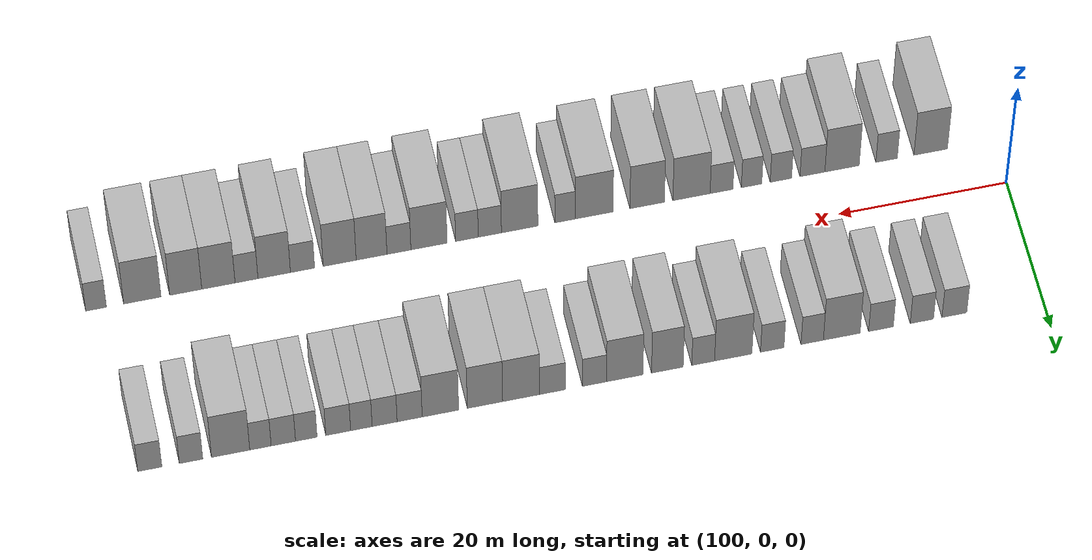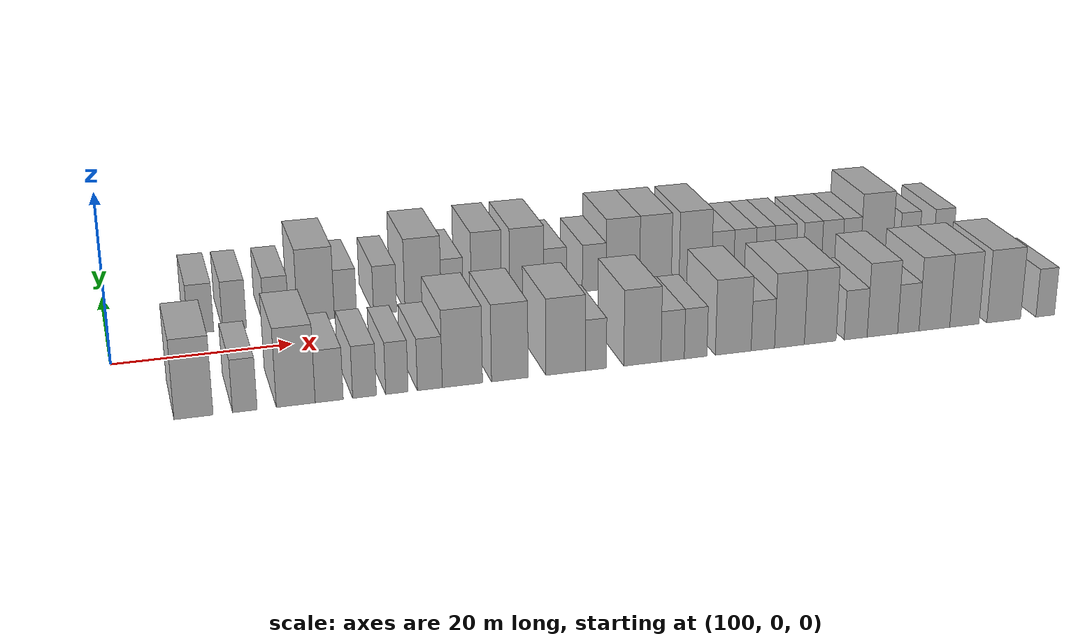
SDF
<sdf version="1.6">
 <world name="default">
  <model name="building_25">
   <static>1</static>
   <pose>110.3980 11.0000 0 0.000000 0.000000 1.570796</pose>
   <link name="link">
    <pose>0 0 3.00 0 0 0</pose>
    <collision name="collision"><geometry><box><size>10.0000 2.9231 6.0000</size></box></geometry></collision>
    <visual name="visual">
     <cast_shadows>0</cast_shadows>
     <geometry><box><size>10.0000 2.9231 6.0000</size></box></geometry>
     <material>
      <script>
       <uri>model://HANNAS_wall/materials/scripts</uri>
       <uri>model://HANNAS_wall/materials/textures</uri>
       <name>vrc/HANNAS_wall</name>
      </script>
     </material>
    </visual>
   </link>
  </model>
  <model name="building_26">
   <static>1</static>
   <pose>114.2277 11.0000 0 0.000000 0.000000 1.570796</pose>
   <link name="link">
    <pose>0 0 3.00 0 0 0</pose>
    <collision name="collision"><geometry><box><size>10.0000 2.7362 6.0000</size></box></geometry></collision>
    <visual name="visual">
     <cast_shadows>0</cast_shadows>
     <geometry><box><size>10.0000 2.7362 6.0000</size></box></geometry>
     <material>
      <script>
       <uri>model://HANNAS_wall/materials/scripts</uri>
       <uri>model://HANNAS_wall/materials/textures</uri>
       <name>vrc/HANNAS_wall</name>
      </script>
     </material>
    </visual>
   </link>
  </model>
  <model name="building_27">
   <static>1</static>
   <pose>119.0449 11.0000 0 0.000000 0.000000 1.570796</pose>
   <link name="link">
    <pose>0 0 3.00 0 0 0</pose>
    <collision name="collision"><geometry><box><size>10.0000 2.8983 6.0000</size></box></geometry></collision>
    <visual name="visual">
     <cast_shadows>0</cast_shadows>
     <geometry><box><size>10.0000 2.8983 6.0000</size></box></geometry>
     <material>
      <script>
       <uri>model://HANNAS_wall/materials/scripts</uri>
       <uri>model://HANNAS_wall/materials/textures</uri>
       <name>vrc/HANNAS_wall</name>
      </script>
     </material>
    </visual>
   </link>
  </model>
  <model name="building_28">
   <static>1</static>
   <pose>123.6505 11.0000 0 0.000000 0.000000 1.570796</pose>
   <link name="link">
    <pose>0 0 4.50 0 0 0</pose>
    <collision name="collision"><geometry><box><size>10.0000 4.3128 9.0000</size></box></geometry></collision>
    <visual name="visual">
     <cast_shadows>0</cast_shadows>
     <geometry><box><size>10.0000 4.3128 9.0000</size></box></geometry>
     <material>
      <script>
       <uri>model://HANNAS_wall/materials/scripts</uri>
       <uri>model://HANNAS_wall/materials/textures</uri>
       <name>vrc/HANNAS_wall</name>
      </script>
     </material>
    </visual>
   </link>
  </model>
  <model name="building_29">
   <static>1</static>
   <pose>127.1187 11.0000 0 0.000000 0.000000 1.570796</pose>
   <link name="link">
    <pose>0 0 3.00 0 0 0</pose>
    <collision name="collision"><geometry><box><size>10.0000 2.6236 6.0000</size></box></geometry></collision>
    <visual name="visual">
     <cast_shadows>0</cast_shadows>
     <geometry><box><size>10.0000 2.6236 6.0000</size></box></geometry>
     <material>
      <script>
       <uri>model://HANNAS_wall/materials/scripts</uri>
       <uri>model://HANNAS_wall/materials/textures</uri>
       <name>vrc/HANNAS_wall</name>
      </script>
     </material>
    </visual>
   </link>
  </model>
  <model name="building_30">
   <static>1</static>
   <pose>131.8054 11.0000 0 0.000000 0.000000 1.570796</pose>
   <link name="link">
    <pose>0 0 3.00 0 0 0</pose>
    <collision name="collision"><geometry><box><size>10.0000 2.7496 6.0000</size></box></geometry></collision>
    <visual name="visual">
     <cast_shadows>0</cast_shadows>
     <geometry><box><size>10.0000 2.7496 6.0000</size></box></geometry>
     <material>
      <script>
       <uri>model://HANNAS_wall/materials/scripts</uri>
       <uri>model://HANNAS_wall/materials/textures</uri>
       <name>vrc/HANNAS_wall</name>
      </script>
     </material>
    </visual>
   </link>
  </model>
  <model name="building_31">
   <static>1</static>
   <pose>136.3638 11.0000 0 0.000000 0.000000 1.570796</pose>
   <link name="link">
    <pose>0 0 4.50 0 0 0</pose>
    <collision name="collision"><geometry><box><size>10.0000 4.3673 9.0000</size></box></geometry></collision>
    <visual name="visual">
     <cast_shadows>0</cast_shadows>
     <geometry><box><size>10.0000 4.3673 9.0000</size></box></geometry>
     <material>
      <script>
       <uri>model://HANNAS_wall/materials/scripts</uri>
       <uri>model://HANNAS_wall/materials/textures</uri>
       <name>vrc/HANNAS_wall</name>
      </script>
     </material>
    </visual>
   </link>
  </model>
  <model name="building_32">
   <static>1</static>
   <pose>139.8839 11.0000 0 0.000000 0.000000 1.570796</pose>
   <link name="link">
    <pose>0 0 3.00 0 0 0</pose>
    <collision name="collision"><geometry><box><size>10.0000 2.6727 6.0000</size></box></geometry></collision>
    <visual name="visual">
     <cast_shadows>0</cast_shadows>
     <geometry><box><size>10.0000 2.6727 6.0000</size></box></geometry>
     <material>
      <script>
       <uri>model://HANNAS_wall/materials/scripts</uri>
       <uri>model://HANNAS_wall/materials/textures</uri>
       <name>vrc/HANNAS_wall</name>
      </script>
     </material>
    </visual>
   </link>
  </model>
  <model name="building_33">
   <static>1</static>
   <pose>144.0669 11.0000 0 0.000000 0.000000 1.570796</pose>
   <link name="link">
    <pose>0 0 4.50 0 0 0</pose>
    <collision name="collision"><geometry><box><size>10.0000 3.6934 9.0000</size></box></geometry></collision>
    <visual name="visual">
     <cast_shadows>0</cast_shadows>
     <geometry><box><size>10.0000 3.6934 9.0000</size></box></geometry>
     <material>
      <script>
       <uri>model://HANNAS_wall/materials/scripts</uri>
       <uri>model://HANNAS_wall/materials/textures</uri>
       <name>vrc/HANNAS_wall</name>
      </script>
     </material>
    </visual>
   </link>
  </model>
  <model name="building_34">
   <static>1</static>
   <pose>149.0356 11.0000 0 0.000000 0.000000 1.570796</pose>
   <link name="link">
    <pose>0 0 4.50 0 0 0</pose>
    <collision name="collision"><geometry><box><size>10.0000 4.2439 9.0000</size></box></geometry></collision>
    <visual name="visual">
     <cast_shadows>0</cast_shadows>
     <geometry><box><size>10.0000 4.2439 9.0000</size></box></geometry>
     <material>
      <script>
       <uri>model://HANNAS_wall/materials/scripts</uri>
       <uri>model://HANNAS_wall/materials/textures</uri>
       <name>vrc/HANNAS_wall</name>
      </script>
     </material>
    </visual>
   </link>
  </model>
  <model name="building_35">
   <static>1</static>
   <pose>152.5553 11.0000 0 0.000000 0.000000 1.570796</pose>
   <link name="link">
    <pose>0 0 3.00 0 0 0</pose>
    <collision name="collision"><geometry><box><size>10.0000 2.7955 6.0000</size></box></geometry></collision>
    <visual name="visual">
     <cast_shadows>0</cast_shadows>
     <geometry><box><size>10.0000 2.7955 6.0000</size></box></geometry>
     <material>
      <script>
       <uri>model://HANNAS_wall/materials/scripts</uri>
       <uri>model://HANNAS_wall/materials/textures</uri>
       <name>vrc/HANNAS_wall</name>
      </script>
     </material>
    </visual>
   </link>
  </model>
  <model name="building_36">
   <static>1</static>
   <pose>157.4433 11.0000 0 0.000000 0.000000 1.570796</pose>
   <link name="link">
    <pose>0 0 3.00 0 0 0</pose>
    <collision name="collision"><geometry><box><size>10.0000 2.9805 6.0000</size></box></geometry></collision>
    <visual name="visual">
     <cast_shadows>0</cast_shadows>
     <geometry><box><size>10.0000 2.9805 6.0000</size></box></geometry>
     <material>
      <script>
       <uri>model://HANNAS_wall/materials/scripts</uri>
       <uri>model://HANNAS_wall/materials/textures</uri>
       <name>vrc/HANNAS_wall</name>
      </script>
     </material>
    </visual>
   </link>
  </model>
  <model name="building_37">
   <static>1</static>
   <pose>161.0737 11.0000 0 0.000000 0.000000 1.570796</pose>
   <link name="link">
    <pose>0 0 4.50 0 0 0</pose>
    <collision name="collision"><geometry><box><size>10.0000 4.2805 9.0000</size></box></geometry></collision>
    <visual name="visual">
     <cast_shadows>0</cast_shadows>
     <geometry><box><size>10.0000 4.2805 9.0000</size></box></geometry>
     <material>
      <script>
       <uri>model://HANNAS_wall/materials/scripts</uri>
       <uri>model://HANNAS_wall/materials/textures</uri>
       <name>vrc/HANNAS_wall</name>
      </script>
     </material>
    </visual>
   </link>
  </model>
  <model name="building_38">
   <static>1</static>
   <pose>165.2589 11.0000 0 0.000000 0.000000 1.570796</pose>
   <link name="link">
    <pose>0 0 4.50 0 0 0</pose>
    <collision name="collision"><geometry><box><size>10.0000 4.0900 9.0000</size></box></geometry></collision>
    <visual name="visual">
     <cast_shadows>0</cast_shadows>
     <geometry><box><size>10.0000 4.0900 9.0000</size></box></geometry>
     <material>
      <script>
       <uri>model://HANNAS_wall/materials/scripts</uri>
       <uri>model://HANNAS_wall/materials/textures</uri>
       <name>vrc/HANNAS_wall</name>
      </script>
     </material>
    </visual>
   </link>
  </model>
  <model name="building_39">
   <static>1</static>
   <pose>170.4120 11.0000 0 0.000000 0.000000 1.570796</pose>
   <link name="link">
    <pose>0 0 4.50 0 0 0</pose>
    <collision name="collision"><geometry><box><size>10.0000 4.2162 9.0000</size></box></geometry></collision>
    <visual name="visual">
     <cast_shadows>0</cast_shadows>
     <geometry><box><size>10.0000 4.2162 9.0000</size></box></geometry>
     <material>
      <script>
       <uri>model://HANNAS_wall/materials/scripts</uri>
       <uri>model://HANNAS_wall/materials/textures</uri>
       <name>vrc/HANNAS_wall</name>
      </script>
     </material>
    </visual>
   </link>
  </model>
  <model name="building_40">
   <static>1</static>
   <pose>173.9680 11.0000 0 0.000000 0.000000 1.570796</pose>
   <link name="link">
    <pose>0 0 3.00 0 0 0</pose>
    <collision name="collision"><geometry><box><size>10.0000 2.8957 6.0000</size></box></geometry></collision>
    <visual name="visual">
     <cast_shadows>0</cast_shadows>
     <geometry><box><size>10.0000 2.8957 6.0000</size></box></geometry>
     <material>
      <script>
       <uri>model://HANNAS_wall/materials/scripts</uri>
       <uri>model://HANNAS_wall/materials/textures</uri>
       <name>vrc/HANNAS_wall</name>
      </script>
     </material>
    </visual>
   </link>
  </model>
  <model name="building_41">
   <static>1</static>
   <pose>176.8570 11.0000 0 0.000000 0.000000 1.570796</pose>
   <link name="link">
    <pose>0 0 3.00 0 0 0</pose>
    <collision name="collision"><geometry><box><size>10.0000 2.8822 6.0000</size></box></geometry></collision>
    <visual name="visual">
     <cast_shadows>0</cast_shadows>
     <geometry><box><size>10.0000 2.8822 6.0000</size></box></geometry>
     <material>
      <script>
       <uri>model://HANNAS_wall/materials/scripts</uri>
       <uri>model://HANNAS_wall/materials/textures</uri>
       <name>vrc/HANNAS_wall</name>
      </script>
     </material>
    </visual>
   </link>
  </model>
  <model name="building_42">
   <static>1</static>
   <pose>179.5350 11.0000 0 0.000000 0.000000 1.570796</pose>
   <link name="link">
    <pose>0 0 3.00 0 0 0</pose>
    <collision name="collision"><geometry><box><size>10.0000 2.4739 6.0000</size></box></geometry></collision>
    <visual name="visual">
     <cast_shadows>0</cast_shadows>
     <geometry><box><size>10.0000 2.4739 6.0000</size></box></geometry>
     <material>
      <script>
       <uri>model://HANNAS_wall/materials/scripts</uri>
       <uri>model://HANNAS_wall/materials/textures</uri>
       <name>vrc/HANNAS_wall</name>
      </script>
     </material>
    </visual>
   </link>
  </model>
  <model name="building_43">
   <static>1</static>
   <pose>182.2047 11.0000 0 0.000000 0.000000 1.570796</pose>
   <link name="link">
    <pose>0 0 3.00 0 0 0</pose>
    <collision name="collision"><geometry><box><size>10.0000 2.8656 6.0000</size></box></geometry></collision>
    <visual name="visual">
     <cast_shadows>0</cast_shadows>
     <geometry><box><size>10.0000 2.8656 6.0000</size></box></geometry>
     <material>
      <script>
       <uri>model://HANNAS_wall/materials/scripts</uri>
       <uri>model://HANNAS_wall/materials/textures</uri>
       <name>vrc/HANNAS_wall</name>
      </script>
     </material>
    </visual>
   </link>
  </model>
  <model name="building_44">
   <static>1</static>
   <pose>185.8760 11.0000 0 0.000000 0.000000 1.570796</pose>
   <link name="link">
    <pose>0 0 3.00 0 0 0</pose>
    <collision name="collision"><geometry><box><size>10.0000 2.4770 6.0000</size></box></geometry></collision>
    <visual name="visual">
     <cast_shadows>0</cast_shadows>
     <geometry><box><size>10.0000 2.4770 6.0000</size></box></geometry>
     <material>
      <script>
       <uri>model://HANNAS_wall/materials/scripts</uri>
       <uri>model://HANNAS_wall/materials/textures</uri>
       <name>vrc/HANNAS_wall</name>
      </script>
     </material>
    </visual>
   </link>
  </model>
  <model name="building_45">
   <static>1</static>
   <pose>188.5147 11.0000 0 0.000000 0.000000 1.570796</pose>
   <link name="link">
    <pose>0 0 3.00 0 0 0</pose>
    <collision name="collision"><geometry><box><size>10.0000 2.8003 6.0000</size></box></geometry></collision>
    <visual name="visual">
     <cast_shadows>0</cast_shadows>
     <geometry><box><size>10.0000 2.8003 6.0000</size></box></geometry>
     <material>
      <script>
       <uri>model://HANNAS_wall/materials/scripts</uri>
       <uri>model://HANNAS_wall/materials/textures</uri>
       <name>vrc/HANNAS_wall</name>
      </script>
     </material>
    </visual>
   </link>
  </model>
  <model name="building_46">
   <static>1</static>
   <pose>191.1427 11.0000 0 0.000000 0.000000 1.570796</pose>
   <link name="link">
    <pose>0 0 3.00 0 0 0</pose>
    <collision name="collision"><geometry><box><size>10.0000 2.4557 6.0000</size></box></geometry></collision>
    <visual name="visual">
     <cast_shadows>0</cast_shadows>
     <geometry><box><size>10.0000 2.4557 6.0000</size></box></geometry>
     <material>
      <script>
       <uri>model://HANNAS_wall/materials/scripts</uri>
       <uri>model://HANNAS_wall/materials/textures</uri>
       <name>vrc/HANNAS_wall</name>
      </script>
     </material>
    </visual>
   </link>
  </model>
  <model name="building_47">
   <static>1</static>
   <pose>194.5632 11.0000 0 0.000000 0.000000 1.570796</pose>
   <link name="link">
    <pose>0 0 4.50 0 0 0</pose>
    <collision name="collision"><geometry><box><size>10.0000 4.3853 9.0000</size></box></geometry></collision>
    <visual name="visual">
     <cast_shadows>0</cast_shadows>
     <geometry><box><size>10.0000 4.3853 9.0000</size></box></geometry>
     <material>
      <script>
       <uri>model://HANNAS_wall/materials/scripts</uri>
       <uri>model://HANNAS_wall/materials/textures</uri>
       <name>vrc/HANNAS_wall</name>
      </script>
     </material>
    </visual>
   </link>
  </model>
  <model name="building_48">
   <static>1</static>
   <pose>199.0978 11.0000 0 0.000000 0.000000 1.570796</pose>
   <link name="link">
    <pose>0 0 3.00 0 0 0</pose>
    <collision name="collision"><geometry><box><size>10.0000 2.6838 6.0000</size></box></geometry></collision>
    <visual name="visual">
     <cast_shadows>0</cast_shadows>
     <geometry><box><size>10.0000 2.6838 6.0000</size></box></geometry>
     <material>
      <script>
       <uri>model://HANNAS_wall/materials/scripts</uri>
       <uri>model://HANNAS_wall/materials/textures</uri>
       <name>vrc/HANNAS_wall</name>
      </script>
     </material>
    </visual>
   </link>
  </model>
  <model name="building_49">
   <static>1</static>
   <pose>203.8183 11.0000 0 0.000000 0.000000 1.570796</pose>
   <link name="link">
    <pose>0 0 3.00 0 0 0</pose>
    <collision name="collision"><geometry><box><size>10.0000 2.7573 6.0000</size></box></geometry></collision>
    <visual name="visual">
     <cast_shadows>0</cast_shadows>
     <geometry><box><size>10.0000 2.7573 6.0000</size></box></geometry>
     <material>
      <script>
       <uri>model://HANNAS_wall/materials/scripts</uri>
       <uri>model://HANNAS_wall/materials/textures</uri>
       <name>vrc/HANNAS_wall</name>
      </script>
     </material>
    </visual>
   </link>
  </model>
  <model name="building_76">
   <static>1</static>
   <pose>107.5454 -11.0000 0 0.000000 0.000000 1.570796</pose>
   <link name="link">
    <pose>0 0 4.50 0 0 0</pose>
    <collision name="collision"><geometry><box><size>10.0000 4.0161 9.0000</size></box></geometry></collision>
    <visual name="visual">
     <cast_shadows>0</cast_shadows>
     <geometry><box><size>10.0000 4.0161 9.0000</size></box></geometry>
     <material>
      <script>
       <uri>model://HANNAS_wall/materials/scripts</uri>
       <uri>model://HANNAS_wall/materials/textures</uri>
       <name>vrc/HANNAS_wall</name>
      </script>
     </material>
    </visual>
   </link>
  </model>
  <model name="building_77">
   <static>1</static>
   <pose>112.8333 -11.0000 0 0.000000 0.000000 1.570796</pose>
   <link name="link">
    <pose>0 0 3.00 0 0 0</pose>
    <collision name="collision"><geometry><box><size>10.0000 2.5599 6.0000</size></box></geometry></collision>
    <visual name="visual">
     <cast_shadows>0</cast_shadows>
     <geometry><box><size>10.0000 2.5599 6.0000</size></box></geometry>
     <material>
      <script>
       <uri>model://HANNAS_wall/materials/scripts</uri>
       <uri>model://HANNAS_wall/materials/textures</uri>
       <name>vrc/HANNAS_wall</name>
      </script>
     </material>
    </visual>
   </link>
  </model>
  <model name="building_78">
   <static>1</static>
   <pose>118.1627 -11.0000 0 0.000000 0.000000 1.570796</pose>
   <link name="link">
    <pose>0 0 4.50 0 0 0</pose>
    <collision name="collision"><geometry><box><size>10.0000 4.0988 9.0000</size></box></geometry></collision>
    <visual name="visual">
     <cast_shadows>0</cast_shadows>
     <geometry><box><size>10.0000 4.0988 9.0000</size></box></geometry>
     <material>
      <script>
       <uri>model://HANNAS_wall/materials/scripts</uri>
       <uri>model://HANNAS_wall/materials/textures</uri>
       <name>vrc/HANNAS_wall</name>
      </script>
     </material>
    </visual>
   </link>
  </model>
  <model name="building_79">
   <static>1</static>
   <pose>121.7004 -11.0000 0 0.000000 0.000000 1.570796</pose>
   <link name="link">
    <pose>0 0 3.00 0 0 0</pose>
    <collision name="collision"><geometry><box><size>10.0000 2.9767 6.0000</size></box></geometry></collision>
    <visual name="visual">
     <cast_shadows>0</cast_shadows>
     <geometry><box><size>10.0000 2.9767 6.0000</size></box></geometry>
     <material>
      <script>
       <uri>model://HANNAS_wall/materials/scripts</uri>
       <uri>model://HANNAS_wall/materials/textures</uri>
       <name>vrc/HANNAS_wall</name>
      </script>
     </material>
    </visual>
   </link>
  </model>
  <model name="building_80">
   <static>1</static>
   <pose>125.4657 -11.0000 0 0.000000 0.000000 1.570796</pose>
   <link name="link">
    <pose>0 0 3.00 0 0 0</pose>
    <collision name="collision"><geometry><box><size>10.0000 2.5539 6.0000</size></box></geometry></collision>
    <visual name="visual">
     <cast_shadows>0</cast_shadows>
     <geometry><box><size>10.0000 2.5539 6.0000</size></box></geometry>
     <material>
      <script>
       <uri>model://HANNAS_wall/materials/scripts</uri>
       <uri>model://HANNAS_wall/materials/textures</uri>
       <name>vrc/HANNAS_wall</name>
      </script>
     </material>
    </visual>
   </link>
  </model>
  <model name="building_81">
   <static>1</static>
   <pose>128.9591 -11.0000 0 0.000000 0.000000 1.570796</pose>
   <link name="link">
    <pose>0 0 3.00 0 0 0</pose>
    <collision name="collision"><geometry><box><size>10.0000 2.4328 6.0000</size></box></geometry></collision>
    <visual name="visual">
     <cast_shadows>0</cast_shadows>
     <geometry><box><size>10.0000 2.4328 6.0000</size></box></geometry>
     <material>
      <script>
       <uri>model://HANNAS_wall/materials/scripts</uri>
       <uri>model://HANNAS_wall/materials/textures</uri>
       <name>vrc/HANNAS_wall</name>
      </script>
     </material>
    </visual>
   </link>
  </model>
  <model name="building_82">
   <static>1</static>
   <pose>132.5349 -11.0000 0 0.000000 0.000000 1.570796</pose>
   <link name="link">
    <pose>0 0 3.00 0 0 0</pose>
    <collision name="collision"><geometry><box><size>10.0000 2.7187 6.0000</size></box></geometry></collision>
    <visual name="visual">
     <cast_shadows>0</cast_shadows>
     <geometry><box><size>10.0000 2.7187 6.0000</size></box></geometry>
     <material>
      <script>
       <uri>model://HANNAS_wall/materials/scripts</uri>
       <uri>model://HANNAS_wall/materials/textures</uri>
       <name>vrc/HANNAS_wall</name>
      </script>
     </material>
    </visual>
   </link>
  </model>
  <model name="building_83">
   <static>1</static>
   <pose>136.1101 -11.0000 0 0.000000 0.000000 1.570796</pose>
   <link name="link">
    <pose>0 0 4.50 0 0 0</pose>
    <collision name="collision"><geometry><box><size>10.0000 4.4318 9.0000</size></box></geometry></collision>
    <visual name="visual">
     <cast_shadows>0</cast_shadows>
     <geometry><box><size>10.0000 4.4318 9.0000</size></box></geometry>
     <material>
      <script>
       <uri>model://HANNAS_wall/materials/scripts</uri>
       <uri>model://HANNAS_wall/materials/textures</uri>
       <name>vrc/HANNAS_wall</name>
      </script>
     </material>
    </visual>
   </link>
  </model>
  <model name="building_84">
   <static>1</static>
   <pose>141.3734 -11.0000 0 0.000000 0.000000 1.570796</pose>
   <link name="link">
    <pose>0 0 4.50 0 0 0</pose>
    <collision name="collision"><geometry><box><size>10.0000 4.0948 9.0000</size></box></geometry></collision>
    <visual name="visual">
     <cast_shadows>0</cast_shadows>
     <geometry><box><size>10.0000 4.0948 9.0000</size></box></geometry>
     <material>
      <script>
       <uri>model://HANNAS_wall/materials/scripts</uri>
       <uri>model://HANNAS_wall/materials/textures</uri>
       <name>vrc/HANNAS_wall</name>
      </script>
     </material>
    </visual>
   </link>
  </model>
  <model name="building_85">
   <static>1</static>
   <pose>147.6516 -11.0000 0 0.000000 0.000000 1.570796</pose>
   <link name="link">
    <pose>0 0 4.50 0 0 0</pose>
    <collision name="collision"><geometry><box><size>10.0000 4.4616 9.0000</size></box></geometry></collision>
    <visual name="visual">
     <cast_shadows>0</cast_shadows>
     <geometry><box><size>10.0000 4.4616 9.0000</size></box></geometry>
     <material>
      <script>
       <uri>model://HANNAS_wall/materials/scripts</uri>
       <uri>model://HANNAS_wall/materials/textures</uri>
       <name>vrc/HANNAS_wall</name>
      </script>
     </material>
    </visual>
   </link>
  </model>
  <model name="building_86">
   <static>1</static>
   <pose>151.0920 -11.0000 0 0.000000 0.000000 1.570796</pose>
   <link name="link">
    <pose>0 0 3.00 0 0 0</pose>
    <collision name="collision"><geometry><box><size>10.0000 2.4192 6.0000</size></box></geometry></collision>
    <visual name="visual">
     <cast_shadows>0</cast_shadows>
     <geometry><box><size>10.0000 2.4192 6.0000</size></box></geometry>
     <material>
      <script>
       <uri>model://HANNAS_wall/materials/scripts</uri>
       <uri>model://HANNAS_wall/materials/textures</uri>
       <name>vrc/HANNAS_wall</name>
      </script>
     </material>
    </visual>
   </link>
  </model>
  <model name="building_87">
   <static>1</static>
   <pose>156.4538 -11.0000 0 0.000000 0.000000 1.570796</pose>
   <link name="link">
    <pose>0 0 4.50 0 0 0</pose>
    <collision name="collision"><geometry><box><size>10.0000 4.3044 9.0000</size></box></geometry></collision>
    <visual name="visual">
     <cast_shadows>0</cast_shadows>
     <geometry><box><size>10.0000 4.3044 9.0000</size></box></geometry>
     <material>
      <script>
       <uri>model://HANNAS_wall/materials/scripts</uri>
       <uri>model://HANNAS_wall/materials/textures</uri>
       <name>vrc/HANNAS_wall</name>
      </script>
     </material>
    </visual>
   </link>
  </model>
  <model name="building_88">
   <static>1</static>
   <pose>159.9714 -11.0000 0 0.000000 0.000000 1.570796</pose>
   <link name="link">
    <pose>0 0 3.00 0 0 0</pose>
    <collision name="collision"><geometry><box><size>10.0000 2.7310 6.0000</size></box></geometry></collision>
    <visual name="visual">
     <cast_shadows>0</cast_shadows>
     <geometry><box><size>10.0000 2.7310 6.0000</size></box></geometry>
     <material>
      <script>
       <uri>model://HANNAS_wall/materials/scripts</uri>
       <uri>model://HANNAS_wall/materials/textures</uri>
       <name>vrc/HANNAS_wall</name>
      </script>
     </material>
    </visual>
   </link>
  </model>
  <model name="building_89">
   <static>1</static>
   <pose>162.6696 -11.0000 0 0.000000 0.000000 1.570796</pose>
   <link name="link">
    <pose>0 0 3.00 0 0 0</pose>
    <collision name="collision"><geometry><box><size>10.0000 2.6654 6.0000</size></box></geometry></collision>
    <visual name="visual">
     <cast_shadows>0</cast_shadows>
     <geometry><box><size>10.0000 2.6654 6.0000</size></box></geometry>
     <material>
      <script>
       <uri>model://HANNAS_wall/materials/scripts</uri>
       <uri>model://HANNAS_wall/materials/textures</uri>
       <name>vrc/HANNAS_wall</name>
      </script>
     </material>
    </visual>
   </link>
  </model>
  <model name="building_90">
   <static>1</static>
   <pose>167.1314 -11.0000 0 0.000000 0.000000 1.570796</pose>
   <link name="link">
    <pose>0 0 4.50 0 0 0</pose>
    <collision name="collision"><geometry><box><size>10.0000 4.2582 9.0000</size></box></geometry></collision>
    <visual name="visual">
     <cast_shadows>0</cast_shadows>
     <geometry><box><size>10.0000 4.2582 9.0000</size></box></geometry>
     <material>
      <script>
       <uri>model://HANNAS_wall/materials/scripts</uri>
       <uri>model://HANNAS_wall/materials/textures</uri>
       <name>vrc/HANNAS_wall</name>
      </script>
     </material>
    </visual>
   </link>
  </model>
  <model name="building_91">
   <static>1</static>
   <pose>170.6668 -11.0000 0 0.000000 0.000000 1.570796</pose>
   <link name="link">
    <pose>0 0 3.00 0 0 0</pose>
    <collision name="collision"><geometry><box><size>10.0000 2.8126 6.0000</size></box></geometry></collision>
    <visual name="visual">
     <cast_shadows>0</cast_shadows>
     <geometry><box><size>10.0000 2.8126 6.0000</size></box></geometry>
     <material>
      <script>
       <uri>model://HANNAS_wall/materials/scripts</uri>
       <uri>model://HANNAS_wall/materials/textures</uri>
       <name>vrc/HANNAS_wall</name>
      </script>
     </material>
    </visual>
   </link>
  </model>
  <model name="building_92">
   <static>1</static>
   <pose>173.8794 -11.0000 0 0.000000 0.000000 1.570796</pose>
   <link name="link">
    <pose>0 0 4.50 0 0 0</pose>
    <collision name="collision"><geometry><box><size>10.0000 3.6125 9.0000</size></box></geometry></collision>
    <visual name="visual">
     <cast_shadows>0</cast_shadows>
     <geometry><box><size>10.0000 3.6125 9.0000</size></box></geometry>
     <material>
      <script>
       <uri>model://HANNAS_wall/materials/scripts</uri>
       <uri>model://HANNAS_wall/materials/textures</uri>
       <name>vrc/HANNAS_wall</name>
      </script>
     </material>
    </visual>
   </link>
  </model>
  <model name="building_93">
   <static>1</static>
   <pose>177.6199 -11.0000 0 0.000000 0.000000 1.570796</pose>
   <link name="link">
    <pose>0 0 4.50 0 0 0</pose>
    <collision name="collision"><geometry><box><size>10.0000 3.8685 9.0000</size></box></geometry></collision>
    <visual name="visual">
     <cast_shadows>0</cast_shadows>
     <geometry><box><size>10.0000 3.8685 9.0000</size></box></geometry>
     <material>
      <script>
       <uri>model://HANNAS_wall/materials/scripts</uri>
       <uri>model://HANNAS_wall/materials/textures</uri>
       <name>vrc/HANNAS_wall</name>
      </script>
     </material>
    </visual>
   </link>
  </model>
  <model name="building_94">
   <static>1</static>
   <pose>181.9690 -11.0000 0 0.000000 0.000000 1.570796</pose>
   <link name="link">
    <pose>0 0 3.00 0 0 0</pose>
    <collision name="collision"><geometry><box><size>10.0000 2.8296 6.0000</size></box></geometry></collision>
    <visual name="visual">
     <cast_shadows>0</cast_shadows>
     <geometry><box><size>10.0000 2.8296 6.0000</size></box></geometry>
     <material>
      <script>
       <uri>model://HANNAS_wall/materials/scripts</uri>
       <uri>model://HANNAS_wall/materials/textures</uri>
       <name>vrc/HANNAS_wall</name>
      </script>
     </material>
    </visual>
   </link>
  </model>
  <model name="building_95">
   <static>1</static>
   <pose>185.2819 -11.0000 0 0.000000 0.000000 1.570796</pose>
   <link name="link">
    <pose>0 0 4.50 0 0 0</pose>
    <collision name="collision"><geometry><box><size>10.0000 3.7964 9.0000</size></box></geometry></collision>
    <visual name="visual">
     <cast_shadows>0</cast_shadows>
     <geometry><box><size>10.0000 3.7964 9.0000</size></box></geometry>
     <material>
      <script>
       <uri>model://HANNAS_wall/materials/scripts</uri>
       <uri>model://HANNAS_wall/materials/textures</uri>
       <name>vrc/HANNAS_wall</name>
      </script>
     </material>
    </visual>
   </link>
  </model>
  <model name="building_96">
   <static>1</static>
   <pose>188.5171 -11.0000 0 0.000000 0.000000 1.570796</pose>
   <link name="link">
    <pose>0 0 3.00 0 0 0</pose>
    <collision name="collision"><geometry><box><size>10.0000 2.6741 6.0000</size></box></geometry></collision>
    <visual name="visual">
     <cast_shadows>0</cast_shadows>
     <geometry><box><size>10.0000 2.6741 6.0000</size></box></geometry>
     <material>
      <script>
       <uri>model://HANNAS_wall/materials/scripts</uri>
       <uri>model://HANNAS_wall/materials/textures</uri>
       <name>vrc/HANNAS_wall</name>
      </script>
     </material>
    </visual>
   </link>
  </model>
  <model name="building_97">
   <static>1</static>
   <pose>191.7957 -11.0000 0 0.000000 0.000000 1.570796</pose>
   <link name="link">
    <pose>0 0 4.50 0 0 0</pose>
    <collision name="collision"><geometry><box><size>10.0000 3.8830 9.0000</size></box></geometry></collision>
    <visual name="visual">
     <cast_shadows>0</cast_shadows>
     <geometry><box><size>10.0000 3.8830 9.0000</size></box></geometry>
     <material>
      <script>
       <uri>model://HANNAS_wall/materials/scripts</uri>
       <uri>model://HANNAS_wall/materials/textures</uri>
       <name>vrc/HANNAS_wall</name>
      </script>
     </material>
    </visual>
   </link>
  </model>
  <model name="building_98">
   <static>1</static>
   <pose>195.6081 -11.0000 0 0.000000 0.000000 1.570796</pose>
   <link name="link">
    <pose>0 0 4.50 0 0 0</pose>
    <collision name="collision"><geometry><box><size>10.0000 3.7419 9.0000</size></box></geometry></collision>
    <visual name="visual">
     <cast_shadows>0</cast_shadows>
     <geometry><box><size>10.0000 3.7419 9.0000</size></box></geometry>
     <material>
      <script>
       <uri>model://HANNAS_wall/materials/scripts</uri>
       <uri>model://HANNAS_wall/materials/textures</uri>
       <name>vrc/HANNAS_wall</name>
      </script>
     </material>
    </visual>
   </link>
  </model>
  <model name="building_99">
   <static>1</static>
   <pose>200.6539 -11.0000 0 0.000000 0.000000 1.570796</pose>
   <link name="link">
    <pose>0 0 4.50 0 0 0</pose>
    <collision name="collision"><geometry><box><size>10.0000 4.3497 9.0000</size></box></geometry></collision>
    <visual name="visual">
     <cast_shadows>0</cast_shadows>
     <geometry><box><size>10.0000 4.3497 9.0000</size></box></geometry>
     <material>
      <script>
       <uri>model://HANNAS_wall/materials/scripts</uri>
       <uri>model://HANNAS_wall/materials/textures</uri>
       <name>vrc/HANNAS_wall</name>
      </script>
     </material>
    </visual>
   </link>
  </model>
  <model name="building_100">
   <static>1</static>
   <pose>206.0341 -11.0000 0 0.000000 0.000000 1.570796</pose>
   <link name="link">
    <pose>0 0 3.00 0 0 0</pose>
    <collision name="collision"><geometry><box><size>10.0000 2.4106 6.0000</size></box></geometry></collision>
    <visual name="visual">
     <cast_shadows>0</cast_shadows>
     <geometry><box><size>10.0000 2.4106 6.0000</size></box></geometry>
     <material>
      <script>
       <uri>model://HANNAS_wall/materials/scripts</uri>
       <uri>model://HANNAS_wall/materials/textures</uri>
       <name>vrc/HANNAS_wall</name>
      </script>
     </material>
    </visual>
   </link>
  </model>
 </world>
</sdf>
